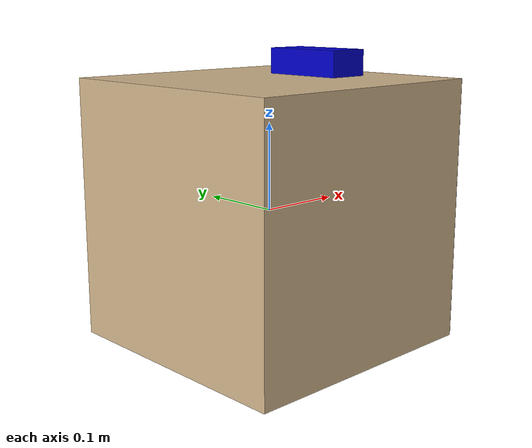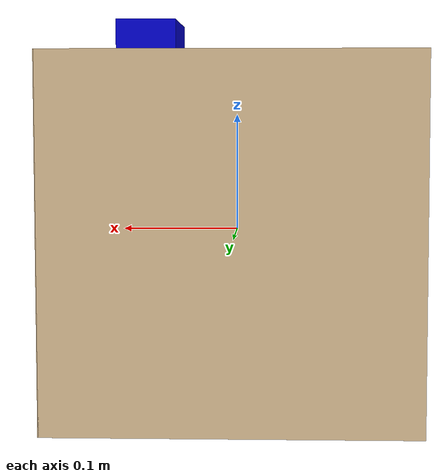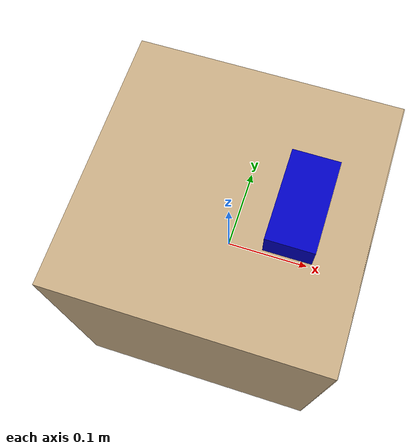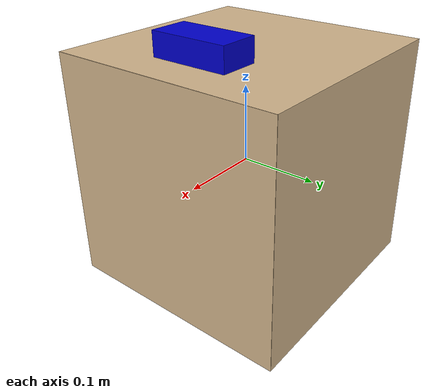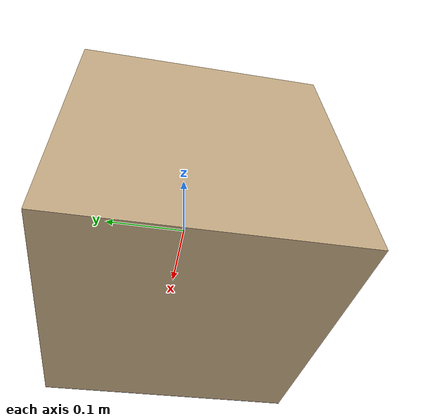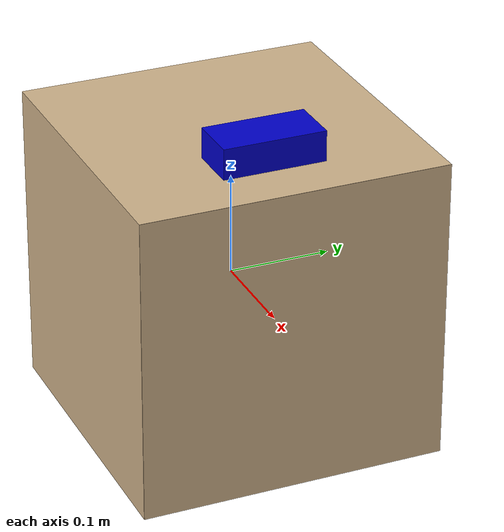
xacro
<?xml version="1.0"?>
<robot name="cardboard_robot" xmlns:xacro="http://www.ros.org/wiki/xacro">

  <!-- Import the ros2_control interface macro -->
  <xacro:include filename="$(find robot_control)/urdf/ros2_control.urdf.xacro" />

  <!-- Constants -->
  <xacro:property name="PI" value="3.14159265359" />

  <!-- Robot Dimensions -->
  <xacro:property name="body_width" value="0.30" />
  <xacro:property name="body_length" value="0.30" />
  <xacro:property name="body_height" value="0.30" />

  <!-- Wheel Properties -->
  <xacro:property name="wheel_radius" value="0.05" />
  <xacro:property name="wheel_width" value="0.04" />
  <xacro:property name="wheel_separation" value="0.24" />
  <xacro:property name="wheel_offset_x" value="0.0" />
  <xacro:property name="wheel_offset_z" value="${-body_height/2 + wheel_radius}" />

  <!-- Castor Wheel Properties -->
  <xacro:property name="castor_radius" value="0.02" />
  <xacro:property name="castor_offset_x_front" value="${body_length/2 - castor_radius}" />
  <xacro:property name="castor_offset_x_rear" value="${-body_length/2 + castor_radius}" />
  <xacro:property name="castor_offset_z" value="${-body_height/2 + castor_radius}" />

  <!-- Material Properties -->
  <material name="cardboard_color">
    <color rgba="0.82 0.71 0.55 1.0"/>
  </material>

  <material name="black">
    <color rgba="0.0 0.0 0.0 1.0"/>
  </material>

  <material name="blue">
    <color rgba="0.0 0.0 0.8 1.0"/>
  </material>

  <!-- Mass Properties -->
  <xacro:property name="body_mass" value="1.0" />
  <xacro:property name="wheel_mass" value="0.2" />
  <xacro:property name="castor_mass" value="0.05" />
  <xacro:property name="camera_mass" value="0.1" />
  <xacro:property name="imu_mass" value="0.05" />
  <xacro:property name="imu_x_offset" value="-0.07" />
  <!-- Castor Wheel Macro -->
  <xacro:macro name="castor_wheel" params="prefix x_offset y_offset">
    <link name="${prefix}_castor_link">
      <visual>
        <geometry>
          <sphere radius="${castor_radius}"/>
        </geometry>
        <material name="black"/>
      </visual>
      <collision>
        <geometry>
          <sphere radius="${castor_radius}"/>
        </geometry>
      </collision>
      <inertial>
        <mass value="${castor_mass}"/>
        <inertia
          ixx="${2.0/5.0 * castor_mass * castor_radius * castor_radius}"
          ixy="0.0"
          ixz="0.0"
          iyy="${2.0/5.0 * castor_mass * castor_radius * castor_radius}"
          iyz="0.0"
          izz="${2.0/5.0 * castor_mass * castor_radius * castor_radius}"/>
      </inertial>
    </link>

    <joint name="${prefix}_castor_joint" type="fixed">
      <parent link="base_link"/>
      <child link="${prefix}_castor_link"/>
      <origin xyz="${x_offset} ${y_offset} ${castor_offset_z}" rpy="0 0 0"/>
    </joint>
  </xacro:macro>

  <!-- Drive Wheel Macro -->
  <xacro:macro name="drive_wheel" params="prefix x_offset y_offset">
    <link name="${prefix}_wheel_link">
      <visual>
        <geometry>
          <cylinder radius="${wheel_radius}" length="${wheel_width}"/>
        </geometry>
        <material name="black"/>
        <origin xyz="0 0 0" rpy="${PI/2} 0 0"/>
      </visual>
      <collision>
        <geometry>
          <cylinder radius="${wheel_radius}" length="${wheel_width}"/>
        </geometry>
        <origin xyz="0 0 0" rpy="${PI/2} 0 0"/>
      </collision>
      <inertial>
        <mass value="${wheel_mass}"/>
        <inertia
          ixx="${wheel_mass * (3 * wheel_radius * wheel_radius + wheel_width * wheel_width) / 12}"
          ixy="0.0"
          ixz="0.0"
          iyy="${wheel_mass * (3 * wheel_radius * wheel_radius + wheel_width * wheel_width) / 12}"
          iyz="0.0"
          izz="${wheel_mass * wheel_radius * wheel_radius / 2}"/>
        <origin xyz="0 0 0" rpy="${PI/2} 0 0"/>
      </inertial>
    </link>

    <joint name="${prefix}_wheel_joint" type="continuous">
      <parent link="base_link"/>
      <child link="${prefix}_wheel_link"/>
      <origin xyz="${x_offset} ${y_offset} ${wheel_offset_z}" rpy="0 0 0"/>
      <axis xyz="0 1 0"/>
      <dynamics damping="0.1" friction="0.1"/>
    </joint>

    <!-- Add a transmission for the wheel joint -->
    <transmission name="${prefix}_wheel_trans">
      <type>transmission_interface/SimpleTransmission</type>
      <joint name="${prefix}_wheel_joint">
        <hardwareInterface>hardware_interface/VelocityJointInterface</hardwareInterface>
      </joint>
      <actuator name="${prefix}_wheel_motor">
        <hardwareInterface>hardware_interface/VelocityJointInterface</hardwareInterface>
        <mechanicalReduction>1</mechanicalReduction>
      </actuator>
    </transmission>
  </xacro:macro>

  <!-- Base Link -->
  <link name="base_link">
    <visual>
      <geometry>
        <box size="${body_length} ${body_width} ${body_height}"/>
      </geometry>
      <material name="cardboard_color"/>
    </visual>
    <collision>
      <geometry>
        <box size="${body_length} ${body_width} ${body_height}"/>
      </geometry>
    </collision>
    <inertial>
      <mass value="${body_mass}"/>
      <inertia
        ixx="${body_mass * (body_width * body_width + body_height * body_height) / 12}"
        ixy="0.0"
        ixz="0.0"
        iyy="${body_mass * (body_length * body_length + body_height * body_height) / 12}"
        iyz="0.0"
        izz="${body_mass * (body_length * body_length + body_width * body_width) / 12}"/>
    </inertial>
  </link>

  <!-- Open Front Face -->
  <link name="front_panel">
    <visual>
      <geometry>
        <box size="0.001 ${body_width} ${body_height}"/>
      </geometry>
      <material name="cardboard_color"/>
    </visual>
    <collision>
      <geometry>
        <box size="0.001 ${body_width} ${body_height}"/>
      </geometry>
    </collision>
    <inertial>
      <mass value="0.01"/>
      <inertia
        ixx="0.0001"
        ixy="0.0"
        ixz="0.0"
        iyy="0.0001"
        iyz="0.0"
        izz="0.0001"/>
    </inertial>
  </link>

  <joint name="front_panel_joint" type="fixed">
    <parent link="base_link"/>
    <child link="front_panel"/>
    <origin xyz="${body_length/2} 0 0" rpy="0 0 0"/>
  </joint>

  <!-- Add drive wheels -->
  <xacro:drive_wheel prefix="left" x_offset="${wheel_offset_x}" y_offset="${wheel_separation/2}"/>
  <xacro:drive_wheel prefix="right" x_offset="${wheel_offset_x}" y_offset="${-wheel_separation/2}"/>

  <!-- Add castor wheels -->
  <xacro:castor_wheel prefix="front_left" x_offset="${castor_offset_x_front}" y_offset="${body_width/4}"/>
  <xacro:castor_wheel prefix="front_right" x_offset="${castor_offset_x_front}" y_offset="${-body_width/4}"/>
  <xacro:castor_wheel prefix="rear_left" x_offset="${castor_offset_x_rear}" y_offset="${body_width/4}"/>
  <xacro:castor_wheel prefix="rear_right" x_offset="${castor_offset_x_rear}" y_offset="${-body_width/4}"/>

  <!-- Camera -->
  <link name="camera_link">
    <visual>
      <geometry>
        <box size="0.05 0.10 0.03"/>
      </geometry>
      <material name="blue"/>
    </visual>
    <collision>
      <geometry>
        <box size="0.05 0.10 0.03"/>
      </geometry>
    </collision>
    <inertial>
      <mass value="${camera_mass}"/>
      <inertia
        ixx="${camera_mass * 0.0001}"
        ixy="0.0"
        ixz="0.0"
        iyy="${camera_mass * 0.0001}"
        iyz="0.0"
        izz="${camera_mass * 0.0001}"/>
    </inertial>
  </link>

  <joint name="camera_joint" type="fixed">
    <parent link="base_link"/>
    <child link="camera_link"/>
    <origin xyz="${body_length/4} 0 ${body_height/2 + 0.015}" rpy="0 0 0"/>
  </joint>

  <!-- Camera optical frame -->
  <link name="camera_optical_frame"/>

  <joint name="camera_optical_joint" type="fixed">
    <parent link="camera_link"/>
    <child link="camera_optical_frame"/>
    <origin xyz="0 0 0" rpy="${-PI/2} 0 ${-PI/2}"/>
  </joint>

  <!-- IMU -->
  <link name="imu_link">
    <visual>
      <geometry>
        <box size="0.02 0.02 0.01"/>
      </geometry>
      <material name="black"/>
    </visual>
    <collision>
      <geometry>
        <box size="0.02 0.02 0.01"/>
      </geometry>
    </collision>
    <inertial>
      <mass value="${imu_mass}"/>
      <inertia
        ixx="${imu_mass * 0.0001}"
        ixy="0.0"
        ixz="0.0"
        iyy="${imu_mass * 0.0001}"
        iyz="0.0"
        izz="${imu_mass * 0.0001}"/>
    </inertial>
  </link>

  <joint name="imu_joint" type="fixed">
    <parent link="base_link"/>
    <child link="imu_link"/>
    <origin xyz="${imu_x_offset} 0 0" rpy="0 0 0"/>
  </joint>

  <!-- Add ros2_control interface -->
  <xacro:unibots_ros2_control
    wheel_separation="${wheel_separation}"
    wheel_radius="${wheel_radius}"
    left_wheel_joint="left_wheel_joint"
    right_wheel_joint="right_wheel_joint"
  />

</robot>
